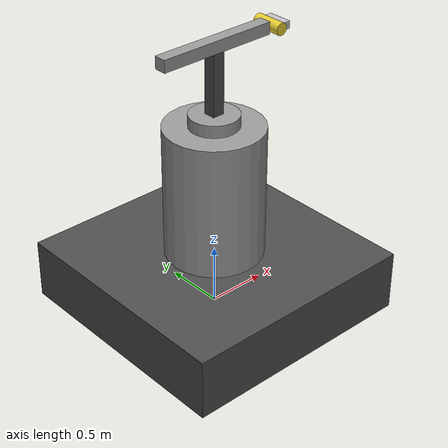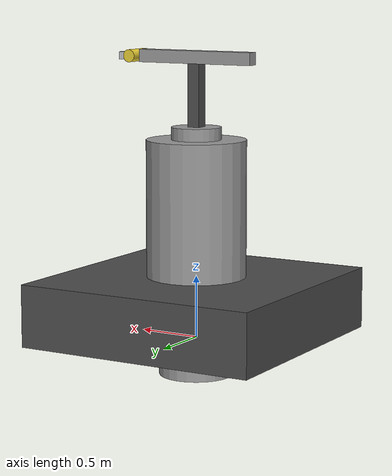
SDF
<?xml version="1.0" ?>
<sdf version="1.5">
    <model name="payload">
    <static>false</static>

    <joint name="world_base" type="fixed">
        <parent>world</parent>
        <child>base</child>
    </joint>

    <link name="base">
        <pose>0 0 0.25 0 0 0</pose>

        <collision name="collision">
            <geometry>
                <box>
                  <size>2.0 2.0 0.5</size>
                </box>
            </geometry>
        </collision>

        <visual name="visual">
            <geometry>
                <box>
                  <size>2.0 2.0 0.5</size>
                </box>
            </geometry>
            <material>
                <script>
                    <uri>file://media/materials/scripts/gazebo.material</uri>
                    <name>Gazebo/DarkGrey</name>
                </script>
            </material>
        </visual>
    </link>

    <include>
        <uri>model://extendable_mast/</uri>
        <pose>0 0 1 0 0 0</pose>
    </include>

    <joint name="base_to_mast" type="prismatic">

        <parent>base</parent>
        <child>extendable_mast::em_mast</child>

        <axis>
            <xyz>
                0.0 0.0 1.0
            </xyz>
            <dynamics>
                <damping>0.05</damping>
                <friction>0.05</friction>
            </dynamics>
            <limit>
                <lower>0.0</lower>
                <upper>2.5</upper>
            </limit>
        </axis>

    </joint>

    <joint name="base_to_mast_cylinder" type="fixed">
        <parent>base</parent>
        <child>extendable_mast::em_mast_cylinder</child>
    </joint>

    <include>
        <uri>model://sensor_mount/</uri>
        <pose>0 0 1.95 0 0 0</pose>
    </include>

    <joint name="mast_sensor_mount" type="revolute">
        <parent>extendable_mast::em_mast</parent>
        <child>sensor_mount::sensor_mount_base</child>
        <axis>
            <xyz>
                0.0 0.0 1.0
            </xyz>
            <dynamics>
                <damping>0.05</damping>
                <friction>1.05</friction>
            </dynamics>
            <limit>
                <!-- 15 rad/s -->
                <velocity>0.261799</velocity>
            </limit>
        </axis>
    </joint>

    <include>
        <uri>model://camera_with_lrf/</uri>
        <pose>0.55 0 2.25 1.5707 0 0</pose>
    </include>

    <joint name="daylight_camera_tilt" type="revolute">
        <parent>sensor_mount::sensor_mount_base</parent>
        <child>camera_with_lrf::cwlrf_camera</child>
        <axis>
            <xyz>
                1.0 0.0 0.0
            </xyz>
            <limit>
                <!-- 15 rad/s -->
                <velocity>0.261799</velocity>
                <lower>-1.57</lower>
                <upper>1.57</upper>
            </limit>
            <dynamics>
                <damping>0.05</damping>
                <friction>1.05</friction>
            </dynamics>
        </axis>
    </joint>

  </model>
</sdf>

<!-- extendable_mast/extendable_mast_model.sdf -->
<sdf version="1.5">
    <model name="extendable_mast">
    <static>false</static>

    <link name="em_mast">
        <pose>0 0 0.2 0 0 0</pose>

        <!-- mast must have a weight to let PID controller work-->
        <intertial>
            <mass>25</mass>
        </intertial>

        <collision name="collision">
            <geometry>
                <cylinder>
                    <radius>0.2</radius>
                    <length>1.0</length>
                </cylinder>
            </geometry>
        </collision>

        <visual name="visual">
            <geometry>
                <cylinder>
                    <radius>0.2</radius>
                    <length>1.0</length>
                </cylinder>
            </geometry>
            <material>
                <script>
                    <uri>file://media/materials/scripts/gazebo.material</uri>
                    <name>Gazebo/Grey</name>
                </script>
            </material>
        </visual>

        <visual name="visual_mast_hidden">
            <pose>0 0 -1.0 0 0 0</pose>
            <geometry>
                <cylinder>
                    <radius>0.3</radius>
                    <length>1.0</length>
                </cylinder>
            </geometry>
            <material>
                <script>
                    <uri>file://media/materials/scripts/gazebo.material</uri>
                    <name>Gazebo/Grey</name>
                </script>
            </material>
        </visual>

    </link>

    <!-- The outer shell of the mast cylinder, it is kept as a separate fixed link so as not to move when mast is extended-->
    <link name="em_mast_cylinder">

        <visual name="visual">
            <geometry>
                <cylinder>
                    <radius>0.4</radius>
                    <length>1.2</length>
                </cylinder>
            </geometry>
            <material>
                <script>
                    <uri>file://media/materials/scripts/gazebo.material</uri>
                    <name>Gazebo/Grey</name>
                </script>
            </material>
        </visual>

    </link>

  </model>
</sdf>

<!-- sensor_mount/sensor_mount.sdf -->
<sdf version="1.5">
    <model name="sensor_mount">
    <static>false</static>

    <link name="sensor_mount_base">

        <collision name="collision">
            <geometry>
                <box>
                  <size>0.1 0.1 0.5</size>
                </box>
            </geometry>
            <surface>
                <friction>
                    <ode>
                        <mu>0.35</mu>
                        <mu>0.55</mu>
                    </ode>
                </friction>
            </surface>
        </collision>

        <visual name="visual">
            <geometry>
                <box>
                  <size>0.1 0.1 0.5</size>
                </box>
            </geometry>
            <material>
                <script>
                    <uri>file://media/materials/scripts/gazebo.material</uri>
                    <name>Gazebo/DarkGrey</name>
                </script>
            </material>
        </visual>

        <collision name="collisionhorizontal">
            <pose>0 0 0.3 0 0 0</pose>
            <geometry>
                <box>
                  <size>1.0 0.1 0.1</size>
                </box>
            </geometry>
            <surface>
                <friction>
                    <ode>
                        <mu>0.35</mu>
                        <mu>0.55</mu>
                    </ode>
                </friction>
            </surface>
        </collision>
        <visual name="visualhorizontal">
            <pose>0 0 0.3 0 0 0</pose>
            <geometry>
                <box>
                  <size>1.0 0.1 0.1</size>
                </box>
            </geometry>
            <material>
                <script>
                    <uri>file://media/materials/scripts/gazebo.material</uri>
                    <name>Gazebo/Grey</name>
                </script>
            </material>
        </visual>

        <intertial>
            <mass>25</mass>
        </intertial>

    </link>

  </model>
</sdf>

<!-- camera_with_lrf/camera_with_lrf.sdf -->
<sdf version="1.5">
    <model name="camera_with_lrf">
    <static>false</static>

    <link name="cwlrf_camera">

        <collision name="collision">
            <geometry>
                <cylinder>
                    <radius>0.05</radius>
                    <length>0.25</length>
                </cylinder>
            </geometry>
            <surface>
                <friction>
                <ode>
                    <mu>0.35</mu>
                    <mu>0.55</mu>
                </ode>
                </friction>
            </surface>
        </collision>

        <intertial>
            <mass>5</mass>
        </intertial>

        <visual name="visual-cam">
            <geometry>
                <cylinder>
                    <radius>0.05</radius>
                    <length>0.25</length>
                </cylinder>
            </geometry>
            <material>
                <script>
                    <uri>file://media/materials/scripts/gazebo.material</uri>
                    <name>Gazebo/ZincYellow</name>
                </script>
            </material>
        </visual>

        <visual name="visual-lrf">
            <pose>0.075 0 0 0 0 0</pose>
            <geometry>
                <box>
                    <size>0.06 0.06 0.20</size>
                </box>
            </geometry>
            <material>
                <script>
                    <uri>file://media/materials/scripts/gazebo.material</uri>
                    <name>Gazebo/Silver</name>
                </script>
            </material>
        </visual>

        <sensor type="camera" name="eo_cam">
            <update_rate>10.0</update_rate>
            <pose>0 0 -0.1 0 1.5707 0</pose>
            <visualize>true</visualize>

            <camera name="head">
                <horizontal_fov>1.3962634</horizontal_fov>
                <image>
                    <width>800</width>
                    <height>600</height>
                    <format>R8G8B8</format>
                </image>
                <clip>
                    <near>0.02</near>
                    <far>300</far>
                </clip>
                <noise>
                    <type>gaussian</type>
                    <mean>0.0</mean>
                    <stddev>0.007</stddev>
                </noise>
            </camera>
            <plugin name="camera_controller" filename="libgazebo_ros_camera.so">
                <alwaysOn>true</alwaysOn>
                <updateRate>0.0</updateRate>
                <cameraName>payload/eo_cam</cameraName>
                <imageTopicName>image_raw</imageTopicName>
                <cameraInfoTopicName>camera_info</cameraInfoTopicName>
                <frameName>map</frameName>
                <hackBaseline>0.07</hackBaseline>
                <distortionK1>0.0</distortionK1>
                <distortionK2>0.0</distortionK2>
                <distortionK3>0.0</distortionK3>
                <distortionT1>0.0</distortionT1>
                <distortionT2>0.0</distortionT2>
            </plugin>
        </sensor>
    </link>

  </model>
</sdf>
